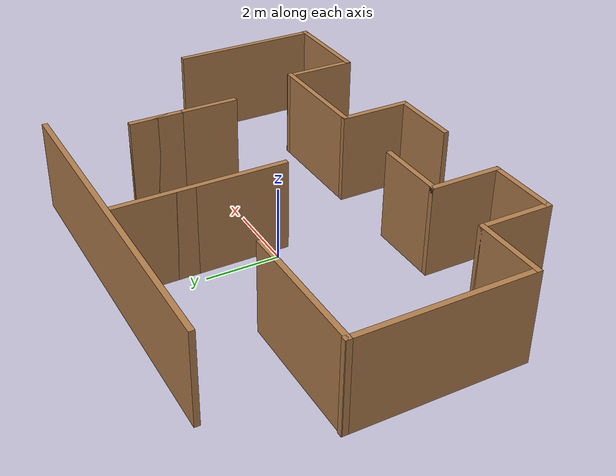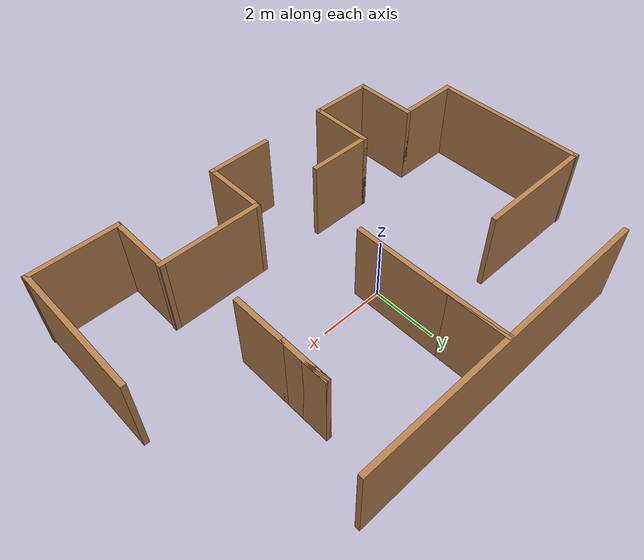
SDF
<?xml version='1.0'?>
<sdf version='1.7'>
  <model name='vacumm_maze2'>
    <pose>0.584828 -0.265507 0 0 -0 0</pose>
    <link name='Wall_0'>
      <collision name='Wall_0_Collision'>
        <geometry>
          <box>
            <size>3.75 0.15 2.5</size>
          </box>
        </geometry>
        <pose>0 0 1.25 0 -0 0</pose>
      </collision>
      <visual name='Wall_0_Visual'>
        <pose>0 0 1.25 0 -0 0</pose>
        <geometry>
          <box>
            <size>3.75 0.15 2.5</size>
          </box>
        </geometry>
        <material>
          <script>
            <uri>file://media/materials/scripts/gazebo.material</uri>
            <name>Gazebo/Wood</name>
          </script>
          <ambient>1 1 1 1</ambient>
        </material>
        <meta>
          <layer>0</layer>
        </meta>
      </visual>
      <pose>-4.79728 1.96657 0 0 -0 3.14159</pose>
    </link>
    <link name='Wall_1'>
      <collision name='Wall_1_Collision'>
        <geometry>
          <box>
            <size>4.77567 0.15 2.5</size>
          </box>
        </geometry>
        <pose>0 0 1.25 0 -0 0</pose>
      </collision>
      <visual name='Wall_1_Visual'>
        <pose>0 0 1.25 0 -0 0</pose>
        <geometry>
          <box>
            <size>4.77567 0.15 2.5</size>
          </box>
        </geometry>
        <material>
          <script>
            <uri>file://media/materials/scripts/gazebo.material</uri>
            <name>Gazebo/Wood</name>
          </script>
          <ambient>1 1 1 1</ambient>
        </material>
        <meta>
          <layer>0</layer>
        </meta>
      </visual>
      <pose>-6.59728 -0.323132 0 0 -0 -1.5708</pose>
    </link>
    <link name='Wall_10'>
      <collision name='Wall_10_Collision'>
        <geometry>
          <box>
            <size>3.1334 0.15 2.5</size>
          </box>
        </geometry>
        <pose>0 0 1.25 0 -0 0</pose>
      </collision>
      <visual name='Wall_10_Visual'>
        <pose>0 0 1.25 0 -0 0</pose>
        <geometry>
          <box>
            <size>3.1334 0.15 2.5</size>
          </box>
        </geometry>
        <material>
          <script>
            <uri>file://media/materials/scripts/gazebo.material</uri>
            <name>Gazebo/Wood</name>
          </script>
          <ambient>1 1 1 1</ambient>
        </material>
        <meta>
          <layer>0</layer>
        </meta>
      </visual>
      <pose>2.59655 -2.61584 0 0 -0 0</pose>
    </link>
    <link name='Wall_11'>
      <collision name='Wall_11_Collision'>
        <geometry>
          <box>
            <size>2.02313 0.15 2.5</size>
          </box>
        </geometry>
        <pose>0 0 1.25 0 -0 0</pose>
      </collision>
      <visual name='Wall_11_Visual'>
        <pose>0 0 1.25 0 -0 0</pose>
        <geometry>
          <box>
            <size>2.02313 0.15 2.5</size>
          </box>
        </geometry>
        <material>
          <script>
            <uri>file://media/materials/scripts/gazebo.material</uri>
            <name>Gazebo/Wood</name>
          </script>
          <ambient>1 1 1 1</ambient>
        </material>
        <meta>
          <layer>0</layer>
        </meta>
      </visual>
      <pose>4.06512 -3.5524 0 0 -0 -1.5708</pose>
    </link>
    <link name='Wall_12'>
      <collision name='Wall_12_Collision'>
        <geometry>
          <box>
            <size>2.65903 0.15 2.5</size>
          </box>
        </geometry>
        <pose>0 0 1.25 0 -0 0</pose>
      </collision>
      <visual name='Wall_12_Visual'>
        <pose>0 0 1.25 0 -0 0</pose>
        <geometry>
          <box>
            <size>2.65903 0.15 2.5</size>
          </box>
        </geometry>
        <material>
          <script>
            <uri>file://media/materials/scripts/gazebo.material</uri>
            <name>Gazebo/Wood</name>
          </script>
          <ambient>1 1 1 1</ambient>
        </material>
        <meta>
          <layer>0</layer>
        </meta>
      </visual>
      <pose>5.34277 -4.48897 0 0 -0 0</pose>
    </link>
    <link name='Wall_13'>
      <collision name='Wall_13_Collision'>
        <geometry>
          <box>
            <size>4.25 0.15 2.5</size>
          </box>
        </geometry>
        <pose>0 0 1.25 0 -0 0</pose>
      </collision>
      <visual name='Wall_13_Visual'>
        <pose>0 0 1.25 0 -0 0</pose>
        <geometry>
          <box>
            <size>4.25 0.15 2.5</size>
          </box>
        </geometry>
        <material>
          <script>
            <uri>file://media/materials/scripts/gazebo.material</uri>
            <name>Gazebo/Wood</name>
          </script>
          <ambient>1 1 1 1</ambient>
        </material>
        <meta>
          <layer>0</layer>
        </meta>
      </visual>
      <pose>6.57415 -2.43897 0 0 -0 1.5708</pose>
    </link>
    <link name='Wall_15'>
      <collision name='Wall_15_Collision'>
        <geometry>
          <box>
            <size>9.5 0.15 2.5</size>
          </box>
        </geometry>
        <pose>0 0 1.25 0 -0 0</pose>
      </collision>
      <visual name='Wall_15_Visual'>
        <pose>0 0 1.25 0 -0 0</pose>
        <geometry>
          <box>
            <size>9.5 0.15 2.5</size>
          </box>
        </geometry>
        <material>
          <script>
            <uri>file://media/materials/scripts/gazebo.material</uri>
            <name>Gazebo/Wood</name>
          </script>
          <ambient>1 1 1 1</ambient>
        </material>
        <meta>
          <layer>0</layer>
        </meta>
      </visual>
      <pose>-0.292345 4.48925 0 0 -0 0</pose>
    </link>
    <link name='Wall_17'>
      <collision name='Wall_17_Collision'>
        <geometry>
          <box>
            <size>4.71959 0.15 2.5</size>
          </box>
        </geometry>
        <pose>0 0 1.25 0 -0 0</pose>
      </collision>
      <visual name='Wall_17_Visual'>
        <pose>0 0 1.25 0 -0 0</pose>
        <geometry>
          <box>
            <size>4.71959 0.15 2.5</size>
          </box>
        </geometry>
        <material>
          <script>
            <uri>file://media/materials/scripts/gazebo.material</uri>
            <name>Gazebo/Wood</name>
          </script>
          <ambient>1 1 1 1</ambient>
        </material>
        <meta>
          <layer>0</layer>
        </meta>
      </visual>
      <pose>-0.216278 2.17733 0 0 -0 1.5708</pose>
    </link>
    <link name='Wall_18'>
      <collision name='Wall_18_Collision'>
        <geometry>
          <box>
            <size>2.25 0.15 2.5</size>
          </box>
        </geometry>
        <pose>0 0 1.25 0 -0 0</pose>
      </collision>
      <visual name='Wall_18_Visual'>
        <pose>0 0 1.25 0 -0 0</pose>
        <geometry>
          <box>
            <size>2.25 0.15 2.5</size>
          </box>
        </geometry>
        <material>
          <script>
            <uri>file://media/materials/scripts/gazebo.material</uri>
            <name>Gazebo/Wood</name>
          </script>
          <ambient>1 1 1 1</ambient>
        </material>
        <meta>
          <layer>0</layer>
        </meta>
      </visual>
      <pose>-0.216278 3.41212 0 0 -0 -1.5708</pose>
    </link>
    <link name='Wall_2'>
      <collision name='Wall_2_Collision'>
        <geometry>
          <box>
            <size>2 0.15 2.5</size>
          </box>
        </geometry>
        <pose>0 0 1.25 0 -0 0</pose>
      </collision>
      <visual name='Wall_2_Visual'>
        <pose>0 0 1.25 0 -0 0</pose>
        <geometry>
          <box>
            <size>2 0.15 2.5</size>
          </box>
        </geometry>
        <material>
          <script>
            <uri>file://media/materials/scripts/gazebo.material</uri>
            <name>Gazebo/Wood</name>
          </script>
          <ambient>1 1 1 1</ambient>
        </material>
        <meta>
          <layer>0</layer>
        </meta>
      </visual>
      <pose>-5.67228 -2.63597 0 0 -0 0</pose>
    </link>
    <link name='Wall_20'>
      <collision name='Wall_20_Collision'>
        <geometry>
          <box>
            <size>1.5 0.15 2.5</size>
          </box>
        </geometry>
        <pose>0 0 1.25 0 -0 0</pose>
      </collision>
      <visual name='Wall_20_Visual'>
        <pose>0 0 1.25 0 -0 0</pose>
        <geometry>
          <box>
            <size>1.5 0.15 2.5</size>
          </box>
        </geometry>
        <material>
          <script>
            <uri>file://media/materials/scripts/gazebo.material</uri>
            <name>Gazebo/Wood</name>
          </script>
          <ambient>1 1 1 1</ambient>
        </material>
        <meta>
          <layer>0</layer>
        </meta>
      </visual>
      <pose>3.43636 1.79842 0 0 -0 1.5708</pose>
    </link>
    <link name='Wall_21'>
      <collision name='Wall_21_Collision'>
        <geometry>
          <box>
            <size>1.5 0.15 2.5</size>
          </box>
        </geometry>
        <pose>0 0 1.25 0 -0 0</pose>
      </collision>
      <visual name='Wall_21_Visual'>
        <pose>0 0 1.25 0 -0 0</pose>
        <geometry>
          <box>
            <size>1.5 0.15 2.5</size>
          </box>
        </geometry>
        <material>
          <script>
            <uri>file://media/materials/scripts/gazebo.material</uri>
            <name>Gazebo/Wood</name>
          </script>
          <ambient>1 1 1 1</ambient>
        </material>
        <meta>
          <layer>0</layer>
        </meta>
      </visual>
      <pose>3.43636 1.79842 0 0 -0 -1.5708</pose>
    </link>
    <link name='Wall_22'>
      <collision name='Wall_22_Collision'>
        <geometry>
          <box>
            <size>0.15 0.15 2.5</size>
          </box>
        </geometry>
        <pose>0 0 1.25 0 -0 0</pose>
      </collision>
      <visual name='Wall_22_Visual'>
        <pose>0 0 1.25 0 -0 0</pose>
        <geometry>
          <box>
            <size>0.15 0.15 2.5</size>
          </box>
        </geometry>
        <material>
          <script>
            <uri>file://media/materials/scripts/gazebo.material</uri>
            <name>Gazebo/Grey</name>
          </script>
          <ambient>1 1 1 1</ambient>
        </material>
        <meta>
          <layer>0</layer>
        </meta>
      </visual>
      <pose>3.43636 1.12342 0 0 -0 0</pose>
    </link>
    <link name='Wall_23'>
      <collision name='Wall_23_Collision'>
        <geometry>
          <box>
            <size>1.75 0.15 2.5</size>
          </box>
        </geometry>
        <pose>0 0 1.25 0 -0 0</pose>
      </collision>
      <visual name='Wall_23_Visual'>
        <pose>0 0 1.25 0 -0 0</pose>
        <geometry>
          <box>
            <size>1.75 0.15 2.5</size>
          </box>
        </geometry>
        <material>
          <script>
            <uri>file://media/materials/scripts/gazebo.material</uri>
            <name>Gazebo/Wood</name>
          </script>
          <ambient>1 1 1 1</ambient>
        </material>
        <meta>
          <layer>0</layer>
        </meta>
      </visual>
      <pose>3.43636 0.323415 0 0 -0 -1.5708</pose>
    </link>
    <link name='Wall_3'>
      <collision name='Wall_3_Collision'>
        <geometry>
          <box>
            <size>2 0.15 2.5</size>
          </box>
        </geometry>
        <pose>0 0 1.25 0 -0 0</pose>
      </collision>
      <visual name='Wall_3_Visual'>
        <pose>0 0 1.25 0 -0 0</pose>
        <geometry>
          <box>
            <size>2 0.15 2.5</size>
          </box>
        </geometry>
        <material>
          <script>
            <uri>file://media/materials/scripts/gazebo.material</uri>
            <name>Gazebo/Wood</name>
          </script>
          <ambient>1 1 1 1</ambient>
        </material>
        <meta>
          <layer>0</layer>
        </meta>
      </visual>
      <pose>-4.74728 -3.56097 0 0 -0 -1.5708</pose>
    </link>
    <link name='Wall_4'>
      <collision name='Wall_4_Collision'>
        <geometry>
          <box>
            <size>2 0.15 2.5</size>
          </box>
        </geometry>
        <pose>0 0 1.25 0 -0 0</pose>
      </collision>
      <visual name='Wall_4_Visual'>
        <pose>0 0 1.25 0 -0 0</pose>
        <geometry>
          <box>
            <size>2 0.15 2.5</size>
          </box>
        </geometry>
        <material>
          <script>
            <uri>file://media/materials/scripts/gazebo.material</uri>
            <name>Gazebo/Wood</name>
          </script>
          <ambient>1 1 1 1</ambient>
        </material>
        <meta>
          <layer>0</layer>
        </meta>
      </visual>
      <pose>-3.82228 -4.48597 0 0 -0 0</pose>
    </link>
    <link name='Wall_5'>
      <collision name='Wall_5_Collision'>
        <geometry>
          <box>
            <size>2 0.15 2.5</size>
          </box>
        </geometry>
        <pose>0 0 1.25 0 -0 0</pose>
      </collision>
      <visual name='Wall_5_Visual'>
        <pose>0 0 1.25 0 -0 0</pose>
        <geometry>
          <box>
            <size>2 0.15 2.5</size>
          </box>
        </geometry>
        <material>
          <script>
            <uri>file://media/materials/scripts/gazebo.material</uri>
            <name>Gazebo/Wood</name>
          </script>
          <ambient>1 1 1 1</ambient>
        </material>
        <meta>
          <layer>0</layer>
        </meta>
      </visual>
      <pose>-2.89728 -3.56097 0 0 -0 1.5708</pose>
    </link>
    <link name='Wall_6'>
      <collision name='Wall_6_Collision'>
        <geometry>
          <box>
            <size>2 0.15 2.5</size>
          </box>
        </geometry>
        <pose>0 0 1.25 0 -0 0</pose>
      </collision>
      <visual name='Wall_6_Visual'>
        <pose>0 0 1.25 0 -0 0</pose>
        <geometry>
          <box>
            <size>2 0.15 2.5</size>
          </box>
        </geometry>
        <material>
          <script>
            <uri>file://media/materials/scripts/gazebo.material</uri>
            <name>Gazebo/Wood</name>
          </script>
          <ambient>1 1 1 1</ambient>
        </material>
        <meta>
          <layer>0</layer>
        </meta>
      </visual>
      <pose>-1.97228 -2.63597 0 0 -0 0</pose>
    </link>
    <link name='Wall_8'>
      <collision name='Wall_8_Collision'>
        <geometry>
          <box>
            <size>2 0.15 2.5</size>
          </box>
        </geometry>
        <pose>0 0 1.25 0 -0 0</pose>
      </collision>
      <visual name='Wall_8_Visual'>
        <pose>0 0 1.25 0 -0 0</pose>
        <geometry>
          <box>
            <size>2 0.15 2.5</size>
          </box>
        </geometry>
        <material>
          <script>
            <uri>file://media/materials/scripts/gazebo.material</uri>
            <name>Gazebo/Wood</name>
          </script>
          <ambient>1 1 1 1</ambient>
        </material>
        <meta>
          <layer>0</layer>
        </meta>
      </visual>
      <pose>0.156722 -4.48897 0 0 -0 0</pose>
    </link>
    <link name='Wall_9'>
      <collision name='Wall_9_Collision'>
        <geometry>
          <box>
            <size>2.0237 0.15 2.5</size>
          </box>
        </geometry>
        <pose>0 0 1.25 0 -0 0</pose>
      </collision>
      <visual name='Wall_9_Visual'>
        <pose>0 0 1.25 0 -0 0</pose>
        <geometry>
          <box>
            <size>2.0237 0.15 2.5</size>
          </box>
        </geometry>
        <material>
          <script>
            <uri>file://media/materials/scripts/gazebo.material</uri>
            <name>Gazebo/Wood</name>
          </script>
          <ambient>1 1 1 1</ambient>
        </material>
        <meta>
          <layer>0</layer>
        </meta>
      </visual>
      <pose>1.08172 -3.5524 0 0 -0 1.5708</pose>
    </link>
    <static>1</static>
  </model>
</sdf>
